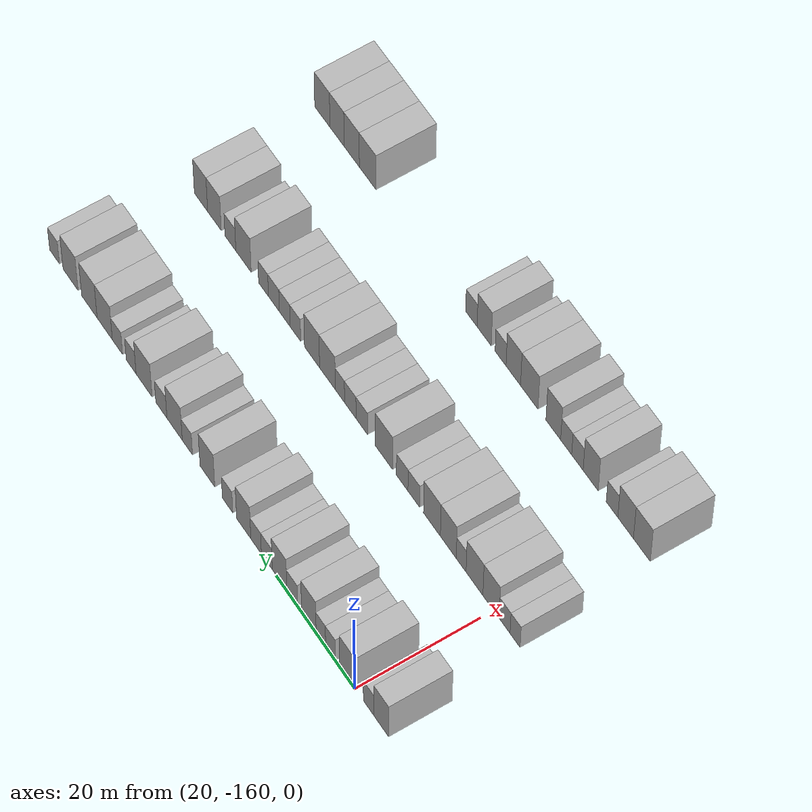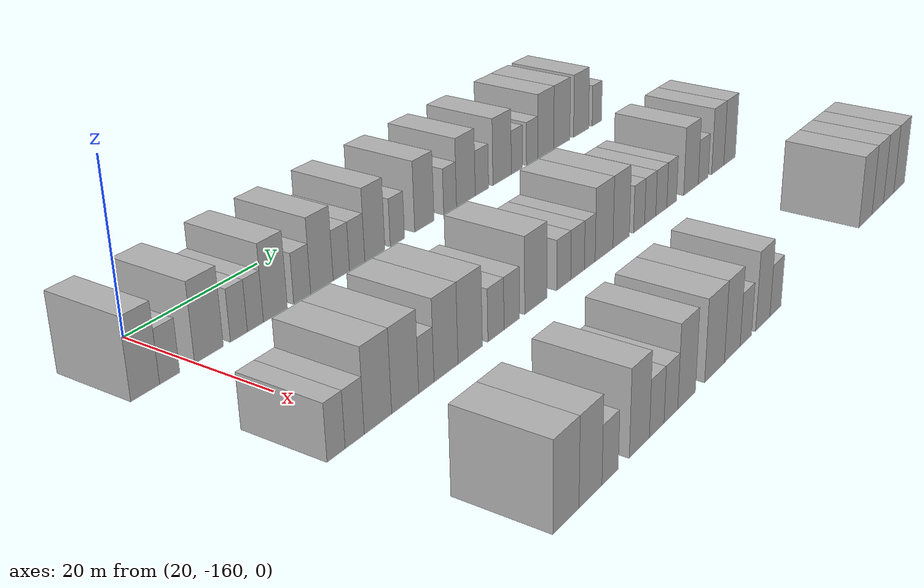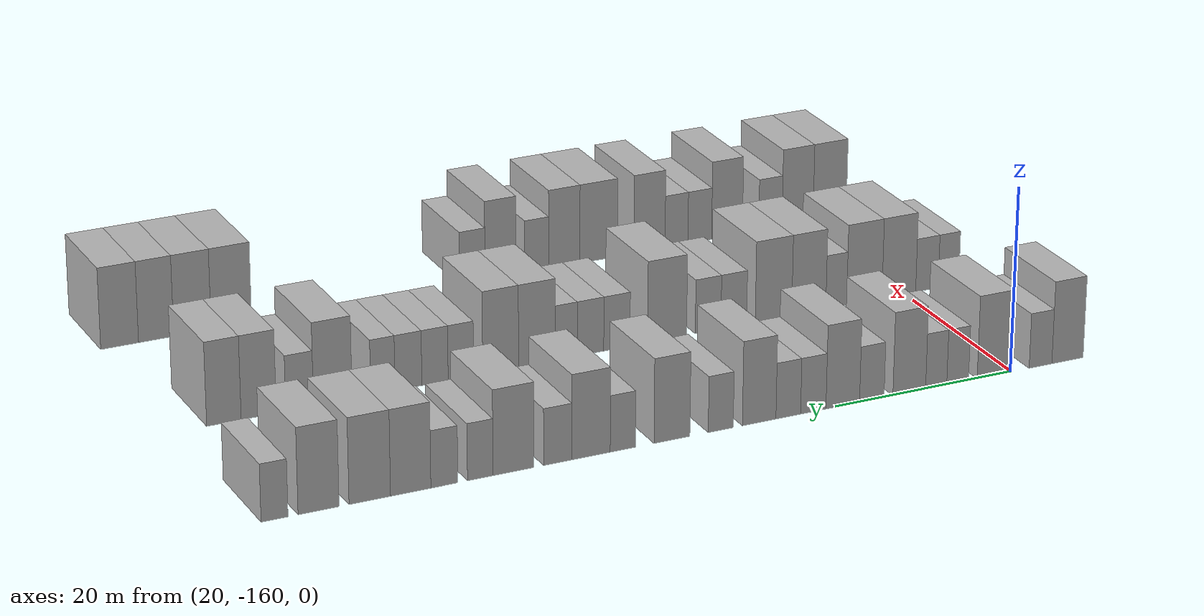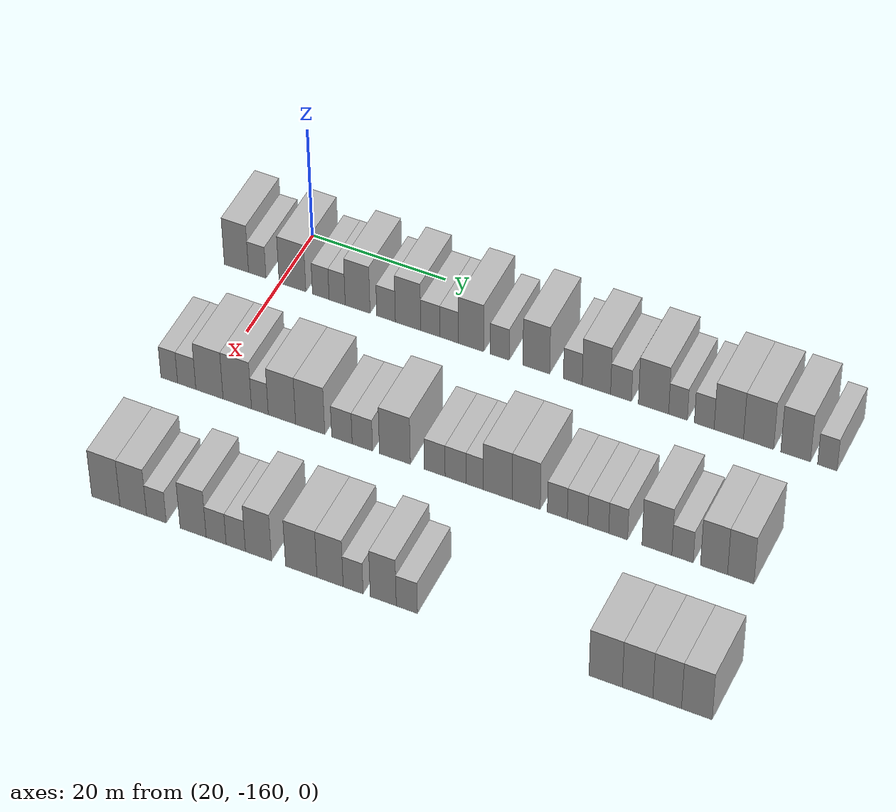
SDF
<sdf version="1.6">
 <world name="default">
  <model name="building_22">
   <static>1</static>
   <pose>25.0000 -166.6228 0 0.000000 0.000000 0.000000</pose>
   <link name="link">
    <pose>0 0 4.50 0 0 0</pose>
    <collision name="collision"><geometry><box><size>10.0000 3.6826 9.0000</size></box></geometry></collision>
    <visual name="visual">
     <cast_shadows>0</cast_shadows>
     <geometry><box><size>10.0000 3.6826 9.0000</size></box></geometry>
     <material>
      <script>
       <uri>model://HANNAS_wall/materials/scripts</uri>
       <uri>model://HANNAS_wall/materials/textures</uri>
       <name>vrc/HANNAS_wall</name>
      </script>
     </material>
    </visual>
   </link>
  </model>
  <model name="building_23">
   <static>1</static>
   <pose>25.0000 -163.4532 0 0.000000 0.000000 0.000000</pose>
   <link name="link">
    <pose>0 0 3.00 0 0 0</pose>
    <collision name="collision"><geometry><box><size>10.0000 2.6567 6.0000</size></box></geometry></collision>
    <visual name="visual">
     <cast_shadows>0</cast_shadows>
     <geometry><box><size>10.0000 2.6567 6.0000</size></box></geometry>
     <material>
      <script>
       <uri>model://HANNAS_wall/materials/scripts</uri>
       <uri>model://HANNAS_wall/materials/textures</uri>
       <name>vrc/HANNAS_wall</name>
      </script>
     </material>
    </visual>
   </link>
  </model>
  <model name="building_24">
   <static>1</static>
   <pose>25.0000 -158.1047 0 0.000000 0.000000 0.000000</pose>
   <link name="link">
    <pose>0 0 4.50 0 0 0</pose>
    <collision name="collision"><geometry><box><size>10.0000 4.0403 9.0000</size></box></geometry></collision>
    <visual name="visual">
     <cast_shadows>0</cast_shadows>
     <geometry><box><size>10.0000 4.0403 9.0000</size></box></geometry>
     <material>
      <script>
       <uri>model://HANNAS_wall/materials/scripts</uri>
       <uri>model://HANNAS_wall/materials/textures</uri>
       <name>vrc/HANNAS_wall</name>
      </script>
     </material>
    </visual>
   </link>
  </model>
  <model name="building_25">
   <static>1</static>
   <pose>25.0000 -153.8327 0 0.000000 0.000000 0.000000</pose>
   <link name="link">
    <pose>0 0 3.00 0 0 0</pose>
    <collision name="collision"><geometry><box><size>10.0000 2.5037 6.0000</size></box></geometry></collision>
    <visual name="visual">
     <cast_shadows>0</cast_shadows>
     <geometry><box><size>10.0000 2.5037 6.0000</size></box></geometry>
     <material>
      <script>
       <uri>model://HANNAS_wall/materials/scripts</uri>
       <uri>model://HANNAS_wall/materials/textures</uri>
       <name>vrc/HANNAS_wall</name>
      </script>
     </material>
    </visual>
   </link>
  </model>
  <model name="building_26">
   <static>1</static>
   <pose>25.0000 -151.3712 0 0.000000 0.000000 0.000000</pose>
   <link name="link">
    <pose>0 0 3.00 0 0 0</pose>
    <collision name="collision"><geometry><box><size>10.0000 2.4193 6.0000</size></box></geometry></collision>
    <visual name="visual">
     <cast_shadows>0</cast_shadows>
     <geometry><box><size>10.0000 2.4193 6.0000</size></box></geometry>
     <material>
      <script>
       <uri>model://HANNAS_wall/materials/scripts</uri>
       <uri>model://HANNAS_wall/materials/textures</uri>
       <name>vrc/HANNAS_wall</name>
      </script>
     </material>
    </visual>
   </link>
  </model>
  <model name="building_27">
   <static>1</static>
   <pose>25.0000 -148.2993 0 0.000000 0.000000 0.000000</pose>
   <link name="link">
    <pose>0 0 4.50 0 0 0</pose>
    <collision name="collision"><geometry><box><size>10.0000 3.7246 9.0000</size></box></geometry></collision>
    <visual name="visual">
     <cast_shadows>0</cast_shadows>
     <geometry><box><size>10.0000 3.7246 9.0000</size></box></geometry>
     <material>
      <script>
       <uri>model://HANNAS_wall/materials/scripts</uri>
       <uri>model://HANNAS_wall/materials/textures</uri>
       <name>vrc/HANNAS_wall</name>
      </script>
     </material>
    </visual>
   </link>
  </model>
  <model name="building_28">
   <static>1</static>
   <pose>25.0000 -144.0534 0 0.000000 0.000000 0.000000</pose>
   <link name="link">
    <pose>0 0 3.00 0 0 0</pose>
    <collision name="collision"><geometry><box><size>10.0000 2.7671 6.0000</size></box></geometry></collision>
    <visual name="visual">
     <cast_shadows>0</cast_shadows>
     <geometry><box><size>10.0000 2.7671 6.0000</size></box></geometry>
     <material>
      <script>
       <uri>model://HANNAS_wall/materials/scripts</uri>
       <uri>model://HANNAS_wall/materials/textures</uri>
       <name>vrc/HANNAS_wall</name>
      </script>
     </material>
    </visual>
   </link>
  </model>
  <model name="building_29">
   <static>1</static>
   <pose>25.0000 -140.7828 0 0.000000 0.000000 0.000000</pose>
   <link name="link">
    <pose>0 0 4.50 0 0 0</pose>
    <collision name="collision"><geometry><box><size>10.0000 3.7740 9.0000</size></box></geometry></collision>
    <visual name="visual">
     <cast_shadows>0</cast_shadows>
     <geometry><box><size>10.0000 3.7740 9.0000</size></box></geometry>
     <material>
      <script>
       <uri>model://HANNAS_wall/materials/scripts</uri>
       <uri>model://HANNAS_wall/materials/textures</uri>
       <name>vrc/HANNAS_wall</name>
      </script>
     </material>
    </visual>
   </link>
  </model>
  <model name="building_30">
   <static>1</static>
   <pose>25.0000 -137.4815 0 0.000000 0.000000 0.000000</pose>
   <link name="link">
    <pose>0 0 3.00 0 0 0</pose>
    <collision name="collision"><geometry><box><size>10.0000 2.8286 6.0000</size></box></geometry></collision>
    <visual name="visual">
     <cast_shadows>0</cast_shadows>
     <geometry><box><size>10.0000 2.8286 6.0000</size></box></geometry>
     <material>
      <script>
       <uri>model://HANNAS_wall/materials/scripts</uri>
       <uri>model://HANNAS_wall/materials/textures</uri>
       <name>vrc/HANNAS_wall</name>
      </script>
     </material>
    </visual>
   </link>
  </model>
  <model name="building_31">
   <static>1</static>
   <pose>25.0000 -134.6977 0 0.000000 0.000000 0.000000</pose>
   <link name="link">
    <pose>0 0 3.00 0 0 0</pose>
    <collision name="collision"><geometry><box><size>10.0000 2.7391 6.0000</size></box></geometry></collision>
    <visual name="visual">
     <cast_shadows>0</cast_shadows>
     <geometry><box><size>10.0000 2.7391 6.0000</size></box></geometry>
     <material>
      <script>
       <uri>model://HANNAS_wall/materials/scripts</uri>
       <uri>model://HANNAS_wall/materials/textures</uri>
       <name>vrc/HANNAS_wall</name>
      </script>
     </material>
    </visual>
   </link>
  </model>
  <model name="building_32">
   <static>1</static>
   <pose>25.0000 -131.4777 0 0.000000 0.000000 0.000000</pose>
   <link name="link">
    <pose>0 0 4.50 0 0 0</pose>
    <collision name="collision"><geometry><box><size>10.0000 3.7009 9.0000</size></box></geometry></collision>
    <visual name="visual">
     <cast_shadows>0</cast_shadows>
     <geometry><box><size>10.0000 3.7009 9.0000</size></box></geometry>
     <material>
      <script>
       <uri>model://HANNAS_wall/materials/scripts</uri>
       <uri>model://HANNAS_wall/materials/textures</uri>
       <name>vrc/HANNAS_wall</name>
      </script>
     </material>
    </visual>
   </link>
  </model>
  <model name="building_33">
   <static>1</static>
   <pose>25.0000 -127.2597 0 0.000000 0.000000 0.000000</pose>
   <link name="link">
    <pose>0 0 3.00 0 0 0</pose>
    <collision name="collision"><geometry><box><size>10.0000 2.7352 6.0000</size></box></geometry></collision>
    <visual name="visual">
     <cast_shadows>0</cast_shadows>
     <geometry><box><size>10.0000 2.7352 6.0000</size></box></geometry>
     <material>
      <script>
       <uri>model://HANNAS_wall/materials/scripts</uri>
       <uri>model://HANNAS_wall/materials/textures</uri>
       <name>vrc/HANNAS_wall</name>
      </script>
     </material>
    </visual>
   </link>
  </model>
  <model name="building_34">
   <static>1</static>
   <pose>25.0000 -121.9509 0 0.000000 0.000000 0.000000</pose>
   <link name="link">
    <pose>0 0 4.50 0 0 0</pose>
    <collision name="collision"><geometry><box><size>10.0000 3.8825 9.0000</size></box></geometry></collision>
    <visual name="visual">
     <cast_shadows>0</cast_shadows>
     <geometry><box><size>10.0000 3.8825 9.0000</size></box></geometry>
     <material>
      <script>
       <uri>model://HANNAS_wall/materials/scripts</uri>
       <uri>model://HANNAS_wall/materials/textures</uri>
       <name>vrc/HANNAS_wall</name>
      </script>
     </material>
    </visual>
   </link>
  </model>
  <model name="building_35">
   <static>1</static>
   <pose>25.0000 -116.6545 0 0.000000 0.000000 0.000000</pose>
   <link name="link">
    <pose>0 0 3.00 0 0 0</pose>
    <collision name="collision"><geometry><box><size>10.0000 2.7103 6.0000</size></box></geometry></collision>
    <visual name="visual">
     <cast_shadows>0</cast_shadows>
     <geometry><box><size>10.0000 2.7103 6.0000</size></box></geometry>
     <material>
      <script>
       <uri>model://HANNAS_wall/materials/scripts</uri>
       <uri>model://HANNAS_wall/materials/textures</uri>
       <name>vrc/HANNAS_wall</name>
      </script>
     </material>
    </visual>
   </link>
  </model>
  <model name="building_36">
   <static>1</static>
   <pose>25.0000 -113.2570 0 0.000000 0.000000 0.000000</pose>
   <link name="link">
    <pose>0 0 4.50 0 0 0</pose>
    <collision name="collision"><geometry><box><size>10.0000 4.0846 9.0000</size></box></geometry></collision>
    <visual name="visual">
     <cast_shadows>0</cast_shadows>
     <geometry><box><size>10.0000 4.0846 9.0000</size></box></geometry>
     <material>
      <script>
       <uri>model://HANNAS_wall/materials/scripts</uri>
       <uri>model://HANNAS_wall/materials/textures</uri>
       <name>vrc/HANNAS_wall</name>
      </script>
     </material>
    </visual>
   </link>
  </model>
  <model name="building_37">
   <static>1</static>
   <pose>25.0000 -109.7206 0 0.000000 0.000000 0.000000</pose>
   <link name="link">
    <pose>0 0 3.00 0 0 0</pose>
    <collision name="collision"><geometry><box><size>10.0000 2.9881 6.0000</size></box></geometry></collision>
    <visual name="visual">
     <cast_shadows>0</cast_shadows>
     <geometry><box><size>10.0000 2.9881 6.0000</size></box></geometry>
     <material>
      <script>
       <uri>model://HANNAS_wall/materials/scripts</uri>
       <uri>model://HANNAS_wall/materials/textures</uri>
       <name>vrc/HANNAS_wall</name>
      </script>
     </material>
    </visual>
   </link>
  </model>
  <model name="building_38">
   <static>1</static>
   <pose>25.0000 -105.0718 0 0.000000 0.000000 0.000000</pose>
   <link name="link">
    <pose>0 0 4.50 0 0 0</pose>
    <collision name="collision"><geometry><box><size>10.0000 4.3095 9.0000</size></box></geometry></collision>
    <visual name="visual">
     <cast_shadows>0</cast_shadows>
     <geometry><box><size>10.0000 4.3095 9.0000</size></box></geometry>
     <material>
      <script>
       <uri>model://HANNAS_wall/materials/scripts</uri>
       <uri>model://HANNAS_wall/materials/textures</uri>
       <name>vrc/HANNAS_wall</name>
      </script>
     </material>
    </visual>
   </link>
  </model>
  <model name="building_39">
   <static>1</static>
   <pose>25.0000 -101.5873 0 0.000000 0.000000 0.000000</pose>
   <link name="link">
    <pose>0 0 3.00 0 0 0</pose>
    <collision name="collision"><geometry><box><size>10.0000 2.6594 6.0000</size></box></geometry></collision>
    <visual name="visual">
     <cast_shadows>0</cast_shadows>
     <geometry><box><size>10.0000 2.6594 6.0000</size></box></geometry>
     <material>
      <script>
       <uri>model://HANNAS_wall/materials/scripts</uri>
       <uri>model://HANNAS_wall/materials/textures</uri>
       <name>vrc/HANNAS_wall</name>
      </script>
     </material>
    </visual>
   </link>
  </model>
  <model name="building_40">
   <static>1</static>
   <pose>25.0000 -97.8645 0 0.000000 0.000000 0.000000</pose>
   <link name="link">
    <pose>0 0 3.00 0 0 0</pose>
    <collision name="collision"><geometry><box><size>10.0000 2.7863 6.0000</size></box></geometry></collision>
    <visual name="visual">
     <cast_shadows>0</cast_shadows>
     <geometry><box><size>10.0000 2.7863 6.0000</size></box></geometry>
     <material>
      <script>
       <uri>model://HANNAS_wall/materials/scripts</uri>
       <uri>model://HANNAS_wall/materials/textures</uri>
       <name>vrc/HANNAS_wall</name>
      </script>
     </material>
    </visual>
   </link>
  </model>
  <model name="building_41">
   <static>1</static>
   <pose>25.0000 -94.4010 0 0.000000 0.000000 0.000000</pose>
   <link name="link">
    <pose>0 0 4.50 0 0 0</pose>
    <collision name="collision"><geometry><box><size>10.0000 4.1406 9.0000</size></box></geometry></collision>
    <visual name="visual">
     <cast_shadows>0</cast_shadows>
     <geometry><box><size>10.0000 4.1406 9.0000</size></box></geometry>
     <material>
      <script>
       <uri>model://HANNAS_wall/materials/scripts</uri>
       <uri>model://HANNAS_wall/materials/textures</uri>
       <name>vrc/HANNAS_wall</name>
      </script>
     </material>
    </visual>
   </link>
  </model>
  <model name="building_42">
   <static>1</static>
   <pose>25.0000 -90.2159 0 0.000000 0.000000 0.000000</pose>
   <link name="link">
    <pose>0 0 4.50 0 0 0</pose>
    <collision name="collision"><geometry><box><size>10.0000 4.2297 9.0000</size></box></geometry></collision>
    <visual name="visual">
     <cast_shadows>0</cast_shadows>
     <geometry><box><size>10.0000 4.2297 9.0000</size></box></geometry>
     <material>
      <script>
       <uri>model://HANNAS_wall/materials/scripts</uri>
       <uri>model://HANNAS_wall/materials/textures</uri>
       <name>vrc/HANNAS_wall</name>
      </script>
     </material>
    </visual>
   </link>
  </model>
  <model name="building_43">
   <static>1</static>
   <pose>25.0000 -85.0308 0 0.000000 0.000000 0.000000</pose>
   <link name="link">
    <pose>0 0 4.50 0 0 0</pose>
    <collision name="collision"><geometry><box><size>10.0000 4.1405 9.0000</size></box></geometry></collision>
    <visual name="visual">
     <cast_shadows>0</cast_shadows>
     <geometry><box><size>10.0000 4.1405 9.0000</size></box></geometry>
     <material>
      <script>
       <uri>model://HANNAS_wall/materials/scripts</uri>
       <uri>model://HANNAS_wall/materials/textures</uri>
       <name>vrc/HANNAS_wall</name>
      </script>
     </material>
    </visual>
   </link>
  </model>
  <model name="building_44">
   <static>1</static>
   <pose>25.0000 -80.6118 0 0.000000 0.000000 0.000000</pose>
   <link name="link">
    <pose>0 0 3.00 0 0 0</pose>
    <collision name="collision"><geometry><box><size>10.0000 2.6974 6.0000</size></box></geometry></collision>
    <visual name="visual">
     <cast_shadows>0</cast_shadows>
     <geometry><box><size>10.0000 2.6974 6.0000</size></box></geometry>
     <material>
      <script>
       <uri>model://HANNAS_wall/materials/scripts</uri>
       <uri>model://HANNAS_wall/materials/textures</uri>
       <name>vrc/HANNAS_wall</name>
      </script>
     </material>
    </visual>
   </link>
  </model>
  <model name="building_155">
   <static>1</static>
   <pose>47.0000 -165.3469 0 0.000000 0.000000 0.000000</pose>
   <link name="link">
    <pose>0 0 3.00 0 0 0</pose>
    <collision name="collision"><geometry><box><size>10.0000 2.4929 6.0000</size></box></geometry></collision>
    <visual name="visual">
     <cast_shadows>0</cast_shadows>
     <geometry><box><size>10.0000 2.4929 6.0000</size></box></geometry>
     <material>
      <script>
       <uri>model://HANNAS_wall/materials/scripts</uri>
       <uri>model://HANNAS_wall/materials/textures</uri>
       <name>vrc/HANNAS_wall</name>
      </script>
     </material>
    </visual>
   </link>
  </model>
  <model name="building_156">
   <static>1</static>
   <pose>47.0000 -162.7439 0 0.000000 0.000000 0.000000</pose>
   <link name="link">
    <pose>0 0 3.00 0 0 0</pose>
    <collision name="collision"><geometry><box><size>10.0000 2.7132 6.0000</size></box></geometry></collision>
    <visual name="visual">
     <cast_shadows>0</cast_shadows>
     <geometry><box><size>10.0000 2.7132 6.0000</size></box></geometry>
     <material>
      <script>
       <uri>model://HANNAS_wall/materials/scripts</uri>
       <uri>model://HANNAS_wall/materials/textures</uri>
       <name>vrc/HANNAS_wall</name>
      </script>
     </material>
    </visual>
   </link>
  </model>
  <model name="building_157">
   <static>1</static>
   <pose>47.0000 -159.3656 0 0.000000 0.000000 0.000000</pose>
   <link name="link">
    <pose>0 0 4.50 0 0 0</pose>
    <collision name="collision"><geometry><box><size>10.0000 4.0434 9.0000</size></box></geometry></collision>
    <visual name="visual">
     <cast_shadows>0</cast_shadows>
     <geometry><box><size>10.0000 4.0434 9.0000</size></box></geometry>
     <material>
      <script>
       <uri>model://HANNAS_wall/materials/scripts</uri>
       <uri>model://HANNAS_wall/materials/textures</uri>
       <name>vrc/HANNAS_wall</name>
      </script>
     </material>
    </visual>
   </link>
  </model>
  <model name="building_158">
   <static>1</static>
   <pose>47.0000 -155.2404 0 0.000000 0.000000 0.000000</pose>
   <link name="link">
    <pose>0 0 4.50 0 0 0</pose>
    <collision name="collision"><geometry><box><size>10.0000 4.2071 9.0000</size></box></geometry></collision>
    <visual name="visual">
     <cast_shadows>0</cast_shadows>
     <geometry><box><size>10.0000 4.2071 9.0000</size></box></geometry>
     <material>
      <script>
       <uri>model://HANNAS_wall/materials/scripts</uri>
       <uri>model://HANNAS_wall/materials/textures</uri>
       <name>vrc/HANNAS_wall</name>
      </script>
     </material>
    </visual>
   </link>
  </model>
  <model name="building_159">
   <static>1</static>
   <pose>47.0000 -151.9055 0 0.000000 0.000000 0.000000</pose>
   <link name="link">
    <pose>0 0 3.00 0 0 0</pose>
    <collision name="collision"><geometry><box><size>10.0000 2.4627 6.0000</size></box></geometry></collision>
    <visual name="visual">
     <cast_shadows>0</cast_shadows>
     <geometry><box><size>10.0000 2.4627 6.0000</size></box></geometry>
     <material>
      <script>
       <uri>model://HANNAS_wall/materials/scripts</uri>
       <uri>model://HANNAS_wall/materials/textures</uri>
       <name>vrc/HANNAS_wall</name>
      </script>
     </material>
    </visual>
   </link>
  </model>
  <model name="building_160">
   <static>1</static>
   <pose>47.0000 -148.6690 0 0.000000 0.000000 0.000000</pose>
   <link name="link">
    <pose>0 0 4.50 0 0 0</pose>
    <collision name="collision"><geometry><box><size>10.0000 4.0103 9.0000</size></box></geometry></collision>
    <visual name="visual">
     <cast_shadows>0</cast_shadows>
     <geometry><box><size>10.0000 4.0103 9.0000</size></box></geometry>
     <material>
      <script>
       <uri>model://HANNAS_wall/materials/scripts</uri>
       <uri>model://HANNAS_wall/materials/textures</uri>
       <name>vrc/HANNAS_wall</name>
      </script>
     </material>
    </visual>
   </link>
  </model>
  <model name="building_161">
   <static>1</static>
   <pose>47.0000 -144.5327 0 0.000000 0.000000 0.000000</pose>
   <link name="link">
    <pose>0 0 4.50 0 0 0</pose>
    <collision name="collision"><geometry><box><size>10.0000 4.2622 9.0000</size></box></geometry></collision>
    <visual name="visual">
     <cast_shadows>0</cast_shadows>
     <geometry><box><size>10.0000 4.2622 9.0000</size></box></geometry>
     <material>
      <script>
       <uri>model://HANNAS_wall/materials/scripts</uri>
       <uri>model://HANNAS_wall/materials/textures</uri>
       <name>vrc/HANNAS_wall</name>
      </script>
     </material>
    </visual>
   </link>
  </model>
  <model name="building_162">
   <static>1</static>
   <pose>47.0000 -139.9137 0 0.000000 0.000000 0.000000</pose>
   <link name="link">
    <pose>0 0 3.00 0 0 0</pose>
    <collision name="collision"><geometry><box><size>10.0000 2.9758 6.0000</size></box></geometry></collision>
    <visual name="visual">
     <cast_shadows>0</cast_shadows>
     <geometry><box><size>10.0000 2.9758 6.0000</size></box></geometry>
     <material>
      <script>
       <uri>model://HANNAS_wall/materials/scripts</uri>
       <uri>model://HANNAS_wall/materials/textures</uri>
       <name>vrc/HANNAS_wall</name>
      </script>
     </material>
    </visual>
   </link>
  </model>
  <model name="building_163">
   <static>1</static>
   <pose>47.0000 -136.9492 0 0.000000 0.000000 0.000000</pose>
   <link name="link">
    <pose>0 0 3.00 0 0 0</pose>
    <collision name="collision"><geometry><box><size>10.0000 2.9533 6.0000</size></box></geometry></collision>
    <visual name="visual">
     <cast_shadows>0</cast_shadows>
     <geometry><box><size>10.0000 2.9533 6.0000</size></box></geometry>
     <material>
      <script>
       <uri>model://HANNAS_wall/materials/scripts</uri>
       <uri>model://HANNAS_wall/materials/textures</uri>
       <name>vrc/HANNAS_wall</name>
      </script>
     </material>
    </visual>
   </link>
  </model>
  <model name="building_164">
   <static>1</static>
   <pose>47.0000 -132.2496 0 0.000000 0.000000 0.000000</pose>
   <link name="link">
    <pose>0 0 4.50 0 0 0</pose>
    <collision name="collision"><geometry><box><size>10.0000 4.4460 9.0000</size></box></geometry></collision>
    <visual name="visual">
     <cast_shadows>0</cast_shadows>
     <geometry><box><size>10.0000 4.4460 9.0000</size></box></geometry>
     <material>
      <script>
       <uri>model://HANNAS_wall/materials/scripts</uri>
       <uri>model://HANNAS_wall/materials/textures</uri>
       <name>vrc/HANNAS_wall</name>
      </script>
     </material>
    </visual>
   </link>
  </model>
  <model name="building_165">
   <static>1</static>
   <pose>47.0000 -126.5386 0 0.000000 0.000000 0.000000</pose>
   <link name="link">
    <pose>0 0 3.00 0 0 0</pose>
    <collision name="collision"><geometry><box><size>10.0000 2.9758 6.0000</size></box></geometry></collision>
    <visual name="visual">
     <cast_shadows>0</cast_shadows>
     <geometry><box><size>10.0000 2.9758 6.0000</size></box></geometry>
     <material>
      <script>
       <uri>model://HANNAS_wall/materials/scripts</uri>
       <uri>model://HANNAS_wall/materials/textures</uri>
       <name>vrc/HANNAS_wall</name>
      </script>
     </material>
    </visual>
   </link>
  </model>
  <model name="building_166">
   <static>1</static>
   <pose>47.0000 -123.5592 0 0.000000 0.000000 0.000000</pose>
   <link name="link">
    <pose>0 0 3.00 0 0 0</pose>
    <collision name="collision"><geometry><box><size>10.0000 2.9830 6.0000</size></box></geometry></collision>
    <visual name="visual">
     <cast_shadows>0</cast_shadows>
     <geometry><box><size>10.0000 2.9830 6.0000</size></box></geometry>
     <material>
      <script>
       <uri>model://HANNAS_wall/materials/scripts</uri>
       <uri>model://HANNAS_wall/materials/textures</uri>
       <name>vrc/HANNAS_wall</name>
      </script>
     </material>
    </visual>
   </link>
  </model>
  <model name="building_167">
   <static>1</static>
   <pose>47.0000 -120.8615 0 0.000000 0.000000 0.000000</pose>
   <link name="link">
    <pose>0 0 3.00 0 0 0</pose>
    <collision name="collision"><geometry><box><size>10.0000 2.4124 6.0000</size></box></geometry></collision>
    <visual name="visual">
     <cast_shadows>0</cast_shadows>
     <geometry><box><size>10.0000 2.4124 6.0000</size></box></geometry>
     <material>
      <script>
       <uri>model://HANNAS_wall/materials/scripts</uri>
       <uri>model://HANNAS_wall/materials/textures</uri>
       <name>vrc/HANNAS_wall</name>
      </script>
     </material>
    </visual>
   </link>
  </model>
  <model name="building_168">
   <static>1</static>
   <pose>47.0000 -117.5974 0 0.000000 0.000000 0.000000</pose>
   <link name="link">
    <pose>0 0 4.50 0 0 0</pose>
    <collision name="collision"><geometry><box><size>10.0000 4.1157 9.0000</size></box></geometry></collision>
    <visual name="visual">
     <cast_shadows>0</cast_shadows>
     <geometry><box><size>10.0000 4.1157 9.0000</size></box></geometry>
     <material>
      <script>
       <uri>model://HANNAS_wall/materials/scripts</uri>
       <uri>model://HANNAS_wall/materials/textures</uri>
       <name>vrc/HANNAS_wall</name>
      </script>
     </material>
    </visual>
   </link>
  </model>
  <model name="building_169">
   <static>1</static>
   <pose>47.0000 -113.5578 0 0.000000 0.000000 0.000000</pose>
   <link name="link">
    <pose>0 0 4.50 0 0 0</pose>
    <collision name="collision"><geometry><box><size>10.0000 3.9635 9.0000</size></box></geometry></collision>
    <visual name="visual">
     <cast_shadows>0</cast_shadows>
     <geometry><box><size>10.0000 3.9635 9.0000</size></box></geometry>
     <material>
      <script>
       <uri>model://HANNAS_wall/materials/scripts</uri>
       <uri>model://HANNAS_wall/materials/textures</uri>
       <name>vrc/HANNAS_wall</name>
      </script>
     </material>
    </visual>
   </link>
  </model>
  <model name="building_170">
   <static>1</static>
   <pose>47.0000 -109.1818 0 0.000000 0.000000 0.000000</pose>
   <link name="link">
    <pose>0 0 3.00 0 0 0</pose>
    <collision name="collision"><geometry><box><size>10.0000 2.7886 6.0000</size></box></geometry></collision>
    <visual name="visual">
     <cast_shadows>0</cast_shadows>
     <geometry><box><size>10.0000 2.7886 6.0000</size></box></geometry>
     <material>
      <script>
       <uri>model://HANNAS_wall/materials/scripts</uri>
       <uri>model://HANNAS_wall/materials/textures</uri>
       <name>vrc/HANNAS_wall</name>
      </script>
     </material>
    </visual>
   </link>
  </model>
  <model name="building_171">
   <static>1</static>
   <pose>47.0000 -106.3564 0 0.000000 0.000000 0.000000</pose>
   <link name="link">
    <pose>0 0 3.00 0 0 0</pose>
    <collision name="collision"><geometry><box><size>10.0000 2.8622 6.0000</size></box></geometry></collision>
    <visual name="visual">
     <cast_shadows>0</cast_shadows>
     <geometry><box><size>10.0000 2.8622 6.0000</size></box></geometry>
     <material>
      <script>
       <uri>model://HANNAS_wall/materials/scripts</uri>
       <uri>model://HANNAS_wall/materials/textures</uri>
       <name>vrc/HANNAS_wall</name>
      </script>
     </material>
    </visual>
   </link>
  </model>
  <model name="building_172">
   <static>1</static>
   <pose>47.0000 -103.4695 0 0.000000 0.000000 0.000000</pose>
   <link name="link">
    <pose>0 0 3.00 0 0 0</pose>
    <collision name="collision"><geometry><box><size>10.0000 2.9117 6.0000</size></box></geometry></collision>
    <visual name="visual">
     <cast_shadows>0</cast_shadows>
     <geometry><box><size>10.0000 2.9117 6.0000</size></box></geometry>
     <material>
      <script>
       <uri>model://HANNAS_wall/materials/scripts</uri>
       <uri>model://HANNAS_wall/materials/textures</uri>
       <name>vrc/HANNAS_wall</name>
      </script>
     </material>
    </visual>
   </link>
  </model>
  <model name="building_173">
   <static>1</static>
   <pose>47.0000 -100.7025 0 0.000000 0.000000 0.000000</pose>
   <link name="link">
    <pose>0 0 3.00 0 0 0</pose>
    <collision name="collision"><geometry><box><size>10.0000 2.6223 6.0000</size></box></geometry></collision>
    <visual name="visual">
     <cast_shadows>0</cast_shadows>
     <geometry><box><size>10.0000 2.6223 6.0000</size></box></geometry>
     <material>
      <script>
       <uri>model://HANNAS_wall/materials/scripts</uri>
       <uri>model://HANNAS_wall/materials/textures</uri>
       <name>vrc/HANNAS_wall</name>
      </script>
     </material>
    </visual>
   </link>
  </model>
  <model name="building_174">
   <static>1</static>
   <pose>47.0000 -95.3338 0 0.000000 0.000000 0.000000</pose>
   <link name="link">
    <pose>0 0 4.50 0 0 0</pose>
    <collision name="collision"><geometry><box><size>10.0000 4.1151 9.0000</size></box></geometry></collision>
    <visual name="visual">
     <cast_shadows>0</cast_shadows>
     <geometry><box><size>10.0000 4.1151 9.0000</size></box></geometry>
     <material>
      <script>
       <uri>model://HANNAS_wall/materials/scripts</uri>
       <uri>model://HANNAS_wall/materials/textures</uri>
       <name>vrc/HANNAS_wall</name>
      </script>
     </material>
    </visual>
   </link>
  </model>
  <model name="building_175">
   <static>1</static>
   <pose>47.0000 -91.8090 0 0.000000 0.000000 0.000000</pose>
   <link name="link">
    <pose>0 0 3.00 0 0 0</pose>
    <collision name="collision"><geometry><box><size>10.0000 2.9346 6.0000</size></box></geometry></collision>
    <visual name="visual">
     <cast_shadows>0</cast_shadows>
     <geometry><box><size>10.0000 2.9346 6.0000</size></box></geometry>
     <material>
      <script>
       <uri>model://HANNAS_wall/materials/scripts</uri>
       <uri>model://HANNAS_wall/materials/textures</uri>
       <name>vrc/HANNAS_wall</name>
      </script>
     </material>
    </visual>
   </link>
  </model>
  <model name="building_176">
   <static>1</static>
   <pose>47.0000 -87.4961 0 0.000000 0.000000 0.000000</pose>
   <link name="link">
    <pose>0 0 4.50 0 0 0</pose>
    <collision name="collision"><geometry><box><size>10.0000 3.6913 9.0000</size></box></geometry></collision>
    <visual name="visual">
     <cast_shadows>0</cast_shadows>
     <geometry><box><size>10.0000 3.6913 9.0000</size></box></geometry>
     <material>
      <script>
       <uri>model://HANNAS_wall/materials/scripts</uri>
       <uri>model://HANNAS_wall/materials/textures</uri>
       <name>vrc/HANNAS_wall</name>
      </script>
     </material>
    </visual>
   </link>
  </model>
  <model name="building_177">
   <static>1</static>
   <pose>47.0000 -83.8483 0 0.000000 0.000000 0.000000</pose>
   <link name="link">
    <pose>0 0 4.50 0 0 0</pose>
    <collision name="collision"><geometry><box><size>10.0000 3.6042 9.0000</size></box></geometry></collision>
    <visual name="visual">
     <cast_shadows>0</cast_shadows>
     <geometry><box><size>10.0000 3.6042 9.0000</size></box></geometry>
     <material>
      <script>
       <uri>model://HANNAS_wall/materials/scripts</uri>
       <uri>model://HANNAS_wall/materials/textures</uri>
       <name>vrc/HANNAS_wall</name>
      </script>
     </material>
    </visual>
   </link>
  </model>
  <model name="building_281">
   <static>1</static>
   <pose>69.0000 -162.9472 0 0.000000 0.000000 0.000000</pose>
   <link name="link">
    <pose>0 0 4.50 0 0 0</pose>
    <collision name="collision"><geometry><box><size>10.0000 4.1243 9.0000</size></box></geometry></collision>
    <visual name="visual">
     <cast_shadows>0</cast_shadows>
     <geometry><box><size>10.0000 4.1243 9.0000</size></box></geometry>
     <material>
      <script>
       <uri>model://HANNAS_wall/materials/scripts</uri>
       <uri>model://HANNAS_wall/materials/textures</uri>
       <name>vrc/HANNAS_wall</name>
      </script>
     </material>
    </visual>
   </link>
  </model>
  <model name="building_282">
   <static>1</static>
   <pose>69.0000 -158.9633 0 0.000000 0.000000 0.000000</pose>
   <link name="link">
    <pose>0 0 4.50 0 0 0</pose>
    <collision name="collision"><geometry><box><size>10.0000 3.8435 9.0000</size></box></geometry></collision>
    <visual name="visual">
     <cast_shadows>0</cast_shadows>
     <geometry><box><size>10.0000 3.8435 9.0000</size></box></geometry>
     <material>
      <script>
       <uri>model://HANNAS_wall/materials/scripts</uri>
       <uri>model://HANNAS_wall/materials/textures</uri>
       <name>vrc/HANNAS_wall</name>
      </script>
     </material>
    </visual>
   </link>
  </model>
  <model name="building_283">
   <static>1</static>
   <pose>69.0000 -155.6148 0 0.000000 0.000000 0.000000</pose>
   <link name="link">
    <pose>0 0 3.00 0 0 0</pose>
    <collision name="collision"><geometry><box><size>10.0000 2.8537 6.0000</size></box></geometry></collision>
    <visual name="visual">
     <cast_shadows>0</cast_shadows>
     <geometry><box><size>10.0000 2.8537 6.0000</size></box></geometry>
     <material>
      <script>
       <uri>model://HANNAS_wall/materials/scripts</uri>
       <uri>model://HANNAS_wall/materials/textures</uri>
       <name>vrc/HANNAS_wall</name>
      </script>
     </material>
    </visual>
   </link>
  </model>
  <model name="building_284">
   <static>1</static>
   <pose>69.0000 -150.3148 0 0.000000 0.000000 0.000000</pose>
   <link name="link">
    <pose>0 0 4.50 0 0 0</pose>
    <collision name="collision"><geometry><box><size>10.0000 3.7462 9.0000</size></box></geometry></collision>
    <visual name="visual">
     <cast_shadows>0</cast_shadows>
     <geometry><box><size>10.0000 3.7462 9.0000</size></box></geometry>
     <material>
      <script>
       <uri>model://HANNAS_wall/materials/scripts</uri>
       <uri>model://HANNAS_wall/materials/textures</uri>
       <name>vrc/HANNAS_wall</name>
      </script>
     </material>
    </visual>
   </link>
  </model>
  <model name="building_285">
   <static>1</static>
   <pose>69.0000 -147.0103 0 0.000000 0.000000 0.000000</pose>
   <link name="link">
    <pose>0 0 3.00 0 0 0</pose>
    <collision name="collision"><geometry><box><size>10.0000 2.8628 6.0000</size></box></geometry></collision>
    <visual name="visual">
     <cast_shadows>0</cast_shadows>
     <geometry><box><size>10.0000 2.8628 6.0000</size></box></geometry>
     <material>
      <script>
       <uri>model://HANNAS_wall/materials/scripts</uri>
       <uri>model://HANNAS_wall/materials/textures</uri>
       <name>vrc/HANNAS_wall</name>
      </script>
     </material>
    </visual>
   </link>
  </model>
  <model name="building_286">
   <static>1</static>
   <pose>69.0000 -144.2001 0 0.000000 0.000000 0.000000</pose>
   <link name="link">
    <pose>0 0 3.00 0 0 0</pose>
    <collision name="collision"><geometry><box><size>10.0000 2.7576 6.0000</size></box></geometry></collision>
    <visual name="visual">
     <cast_shadows>0</cast_shadows>
     <geometry><box><size>10.0000 2.7576 6.0000</size></box></geometry>
     <material>
      <script>
       <uri>model://HANNAS_wall/materials/scripts</uri>
       <uri>model://HANNAS_wall/materials/textures</uri>
       <name>vrc/HANNAS_wall</name>
      </script>
     </material>
    </visual>
   </link>
  </model>
  <model name="building_287">
   <static>1</static>
   <pose>69.0000 -140.9666 0 0.000000 0.000000 0.000000</pose>
   <link name="link">
    <pose>0 0 4.50 0 0 0</pose>
    <collision name="collision"><geometry><box><size>10.0000 3.7094 9.0000</size></box></geometry></collision>
    <visual name="visual">
     <cast_shadows>0</cast_shadows>
     <geometry><box><size>10.0000 3.7094 9.0000</size></box></geometry>
     <material>
      <script>
       <uri>model://HANNAS_wall/materials/scripts</uri>
       <uri>model://HANNAS_wall/materials/textures</uri>
       <name>vrc/HANNAS_wall</name>
      </script>
     </material>
    </visual>
   </link>
  </model>
  <model name="building_288">
   <static>1</static>
   <pose>69.0000 -134.8986 0 0.000000 0.000000 0.000000</pose>
   <link name="link">
    <pose>0 0 4.50 0 0 0</pose>
    <collision name="collision"><geometry><box><size>10.0000 4.4265 9.0000</size></box></geometry></collision>
    <visual name="visual">
     <cast_shadows>0</cast_shadows>
     <geometry><box><size>10.0000 4.4265 9.0000</size></box></geometry>
     <material>
      <script>
       <uri>model://HANNAS_wall/materials/scripts</uri>
       <uri>model://HANNAS_wall/materials/textures</uri>
       <name>vrc/HANNAS_wall</name>
      </script>
     </material>
    </visual>
   </link>
  </model>
  <model name="building_289">
   <static>1</static>
   <pose>69.0000 -130.8397 0 0.000000 0.000000 0.000000</pose>
   <link name="link">
    <pose>0 0 4.50 0 0 0</pose>
    <collision name="collision"><geometry><box><size>10.0000 3.6914 9.0000</size></box></geometry></collision>
    <visual name="visual">
     <cast_shadows>0</cast_shadows>
     <geometry><box><size>10.0000 3.6914 9.0000</size></box></geometry>
     <material>
      <script>
       <uri>model://HANNAS_wall/materials/scripts</uri>
       <uri>model://HANNAS_wall/materials/textures</uri>
       <name>vrc/HANNAS_wall</name>
      </script>
     </material>
    </visual>
   </link>
  </model>
  <model name="building_290">
   <static>1</static>
   <pose>69.0000 -127.5987 0 0.000000 0.000000 0.000000</pose>
   <link name="link">
    <pose>0 0 3.00 0 0 0</pose>
    <collision name="collision"><geometry><box><size>10.0000 2.7906 6.0000</size></box></geometry></collision>
    <visual name="visual">
     <cast_shadows>0</cast_shadows>
     <geometry><box><size>10.0000 2.7906 6.0000</size></box></geometry>
     <material>
      <script>
       <uri>model://HANNAS_wall/materials/scripts</uri>
       <uri>model://HANNAS_wall/materials/textures</uri>
       <name>vrc/HANNAS_wall</name>
      </script>
     </material>
    </visual>
   </link>
  </model>
  <model name="building_291">
   <static>1</static>
   <pose>69.0000 -123.3910 0 0.000000 0.000000 0.000000</pose>
   <link name="link">
    <pose>0 0 4.50 0 0 0</pose>
    <collision name="collision"><geometry><box><size>10.0000 3.6248 9.0000</size></box></geometry></collision>
    <visual name="visual">
     <cast_shadows>0</cast_shadows>
     <geometry><box><size>10.0000 3.6248 9.0000</size></box></geometry>
     <material>
      <script>
       <uri>model://HANNAS_wall/materials/scripts</uri>
       <uri>model://HANNAS_wall/materials/textures</uri>
       <name>vrc/HANNAS_wall</name>
      </script>
     </material>
    </visual>
   </link>
  </model>
  <model name="building_292">
   <static>1</static>
   <pose>69.0000 -120.1073 0 0.000000 0.000000 0.000000</pose>
   <link name="link">
    <pose>0 0 3.00 0 0 0</pose>
    <collision name="collision"><geometry><box><size>10.0000 2.9426 6.0000</size></box></geometry></collision>
    <visual name="visual">
     <cast_shadows>0</cast_shadows>
     <geometry><box><size>10.0000 2.9426 6.0000</size></box></geometry>
     <material>
      <script>
       <uri>model://HANNAS_wall/materials/scripts</uri>
       <uri>model://HANNAS_wall/materials/textures</uri>
       <name>vrc/HANNAS_wall</name>
      </script>
     </material>
    </visual>
   </link>
  </model>
  <model name="building_293">
   <static>1</static>
   <pose>69.0000 -92.9450 0 0.000000 0.000000 0.000000</pose>
   <link name="link">
    <pose>0 0 4.50 0 0 0</pose>
    <collision name="collision"><geometry><box><size>10.0000 4.4606 9.0000</size></box></geometry></collision>
    <visual name="visual">
     <cast_shadows>0</cast_shadows>
     <geometry><box><size>10.0000 4.4606 9.0000</size></box></geometry>
     <material>
      <script>
       <uri>model://HANNAS_wall/materials/scripts</uri>
       <uri>model://HANNAS_wall/materials/textures</uri>
       <name>vrc/HANNAS_wall</name>
      </script>
     </material>
    </visual>
   </link>
  </model>
  <model name="building_294">
   <static>1</static>
   <pose>69.0000 -88.6700 0 0.000000 0.000000 0.000000</pose>
   <link name="link">
    <pose>0 0 4.50 0 0 0</pose>
    <collision name="collision"><geometry><box><size>10.0000 4.0895 9.0000</size></box></geometry></collision>
    <visual name="visual">
     <cast_shadows>0</cast_shadows>
     <geometry><box><size>10.0000 4.0895 9.0000</size></box></geometry>
     <material>
      <script>
       <uri>model://HANNAS_wall/materials/scripts</uri>
       <uri>model://HANNAS_wall/materials/textures</uri>
       <name>vrc/HANNAS_wall</name>
      </script>
     </material>
    </visual>
   </link>
  </model>
  <model name="building_295">
   <static>1</static>
   <pose>69.0000 -84.7175 0 0.000000 0.000000 0.000000</pose>
   <link name="link">
    <pose>0 0 4.50 0 0 0</pose>
    <collision name="collision"><geometry><box><size>10.0000 3.8154 9.0000</size></box></geometry></collision>
    <visual name="visual">
     <cast_shadows>0</cast_shadows>
     <geometry><box><size>10.0000 3.8154 9.0000</size></box></geometry>
     <material>
      <script>
       <uri>model://HANNAS_wall/materials/scripts</uri>
       <uri>model://HANNAS_wall/materials/textures</uri>
       <name>vrc/HANNAS_wall</name>
      </script>
     </material>
    </visual>
   </link>
  </model>
  <model name="building_296">
   <static>1</static>
   <pose>69.0000 -80.7724 0 0.000000 0.000000 0.000000</pose>
   <link name="link">
    <pose>0 0 4.50 0 0 0</pose>
    <collision name="collision"><geometry><box><size>10.0000 4.0748 9.0000</size></box></geometry></collision>
    <visual name="visual">
     <cast_shadows>0</cast_shadows>
     <geometry><box><size>10.0000 4.0748 9.0000</size></box></geometry>
     <material>
      <script>
       <uri>model://HANNAS_wall/materials/scripts</uri>
       <uri>model://HANNAS_wall/materials/textures</uri>
       <name>vrc/HANNAS_wall</name>
      </script>
     </material>
    </visual>
   </link>
  </model>
 </world>
</sdf>
